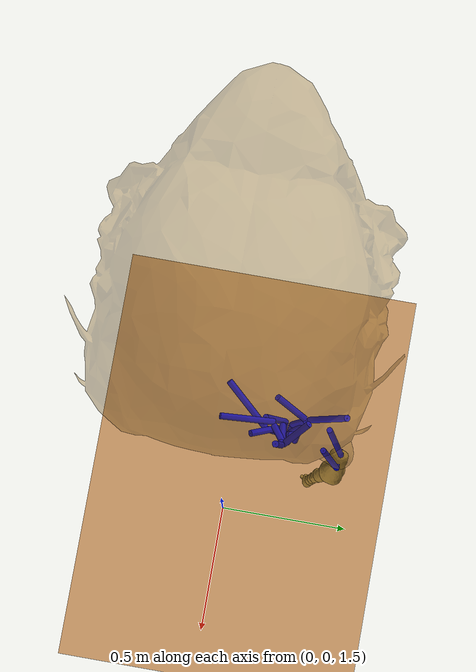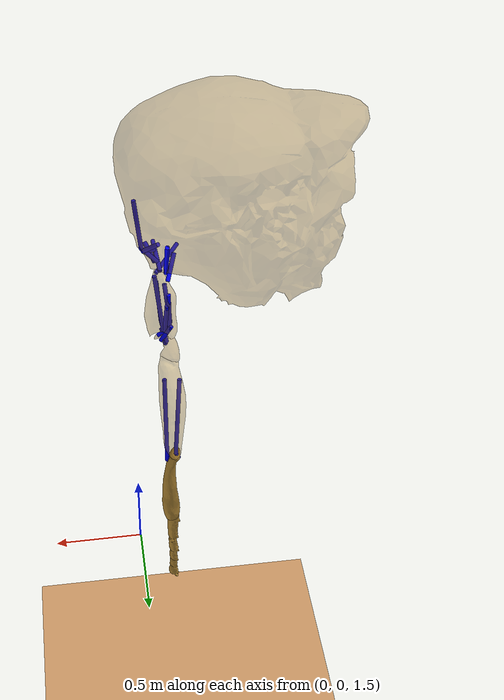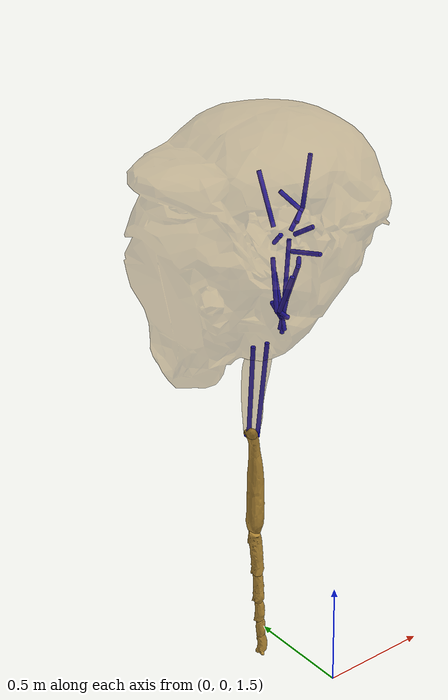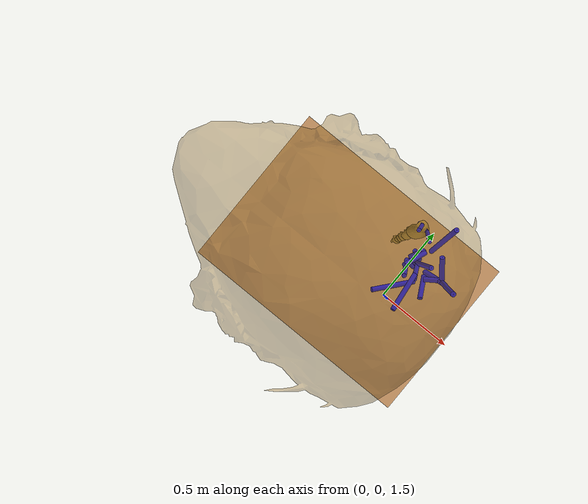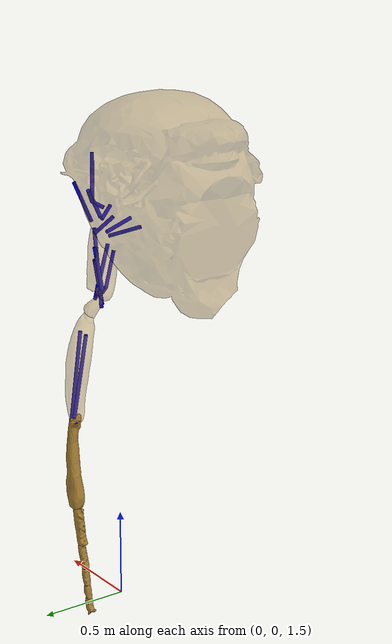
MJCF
<mujoco model="template">
  <!-- This model has been converted from an OpenSim model. Model conversion by MyoConverter https://github.com/MyoHub/myoconverter. This model is licensed under Apache 2.0. -->
  <compiler angle="radian" autolimits="true"/>
  <option timestep="1e-04" gravity="0 0 -9801"/>
  <size njmax="1000" nconmax="400" nkey="1" nuser_jnt="1"/>
  <visual>
    <scale framelength="0.5" framewidth="0.01"/>
  </visual>
  <statistic meansize="0.298677" extent="5.78307" center="-0.79295 0.00627929 2.89153"/>
  <default class="main">
    <joint limited="true" armature="0.0005" stiffness="0.4" damping="0.02"/>
    <geom margin="0.001" rgba="0.8 0.6 0.4 1"/>
    <site size="0.001 0.005 0.005"/>
    <tendon limited="false" width="0.01" rgba="0.0 0.0 0.95 1"/>
    <default class="muscle">
      <general ctrllimited="true" ctrlrange="0 1" dyntype="muscle" gaintype="muscle" biastype="muscle" dynprm="0.01 0.04 0 0 0 0 0 0 0 0" gainprm="0.75 1.05 -1 200 0.5 1.6 1.5 1.3 1.2 0" biasprm="0.75 1.05 -1 200 0.5 1.6 1.5 1.3 1.2 0"/>
    </default>
    <default class="motor">
      <general gainprm="5 0 0 0 0 0 0 0 0 0"/>
    </default>
  </default>
  <asset>
    <texture type="skybox" builtin="gradient" rgb1="0.1 0.1 0.1" rgb2="0 0 0" width="256" height="1536"/>
    <mesh name="Thorax_geom_Thorax" file="./meshes/stl/Thorax.stl" scale="1000 1000 1000"/>
    <mesh name="A1A2_geom_A1A2" file="./meshes/stl/A1A2.stl" scale="1000 1000 1000"/>
    <mesh name="A3_geom_A3" file="./meshes/stl/A3.stl" scale="1000 1000 1000"/>
    <mesh name="A4_geom_A4" file="./meshes/stl/A4.stl" scale="1000 1000 1000"/>
    <mesh name="A5_geom_A5" file="./meshes/stl/A5.stl" scale="1000 1000 1000"/>
    <mesh name="A6_geom_A6" file="./meshes/stl/A6.stl" scale="1000 1000 1000"/>
    <mesh name="Head_geom_Head" file="./meshes/stl/Head.stl" scale="1000 1000 1000"/>
    <mesh name="LEye_geom_LEye" file="./meshes/stl/LEye.stl" scale="1000 1000 1000"/>
    <mesh name="LPedicel_geom_LPedicel" file="./meshes/stl/LPedicel.stl" scale="1000 1000 1000"/>
    <mesh name="LFuniculus_geom_LFuniculus" file="./meshes/stl/LFuniculus.stl" scale="1000 1000 1000"/>
    <mesh name="LArista_geom_LArista" file="./meshes/stl/LArista.stl" scale="1000 1000 1000"/>
    <mesh name="REye_geom_REye" file="./meshes/stl/REye.stl" scale="1000 1000 1000"/>
    <mesh name="RPedicel_geom_RPedicel" file="./meshes/stl/RPedicel.stl" scale="1000 1000 1000"/>
    <mesh name="RFuniculus_geom_RFuniculus" file="./meshes/stl/RFuniculus.stl" scale="1000 1000 1000"/>
    <mesh name="RArista_geom_RArista" file="./meshes/stl/RArista.stl" scale="1000 1000 1000"/>
    <mesh name="Rostrum_geom_Rostrum" file="./meshes/stl/Rostrum.stl" scale="1000 1000 1000"/>
    <mesh name="Haustellum_geom_Haustellum" file="./meshes/stl/Haustellum.stl" scale="1000 1000 1000"/>
    <mesh name="LFCoxa_geom_LFCoxa" file="./meshes/stl/LFCoxa.stl" scale="1000 1000 1000"/>
    <mesh name="LFTrochanter_geom_LFTrochanter" file="./meshes/stl/LFTrochanter.stl" scale="1000 1000 1000"/>
    <mesh name="LFFemur_geom_LFFemur" file="./meshes/stl/LFFemur.stl" scale="1000 1000 1000"/>
    <mesh name="LFTibia_geom_LFTibia" file="./meshes/stl/LFTibia.stl" scale="1000 1000 1000"/>
    <mesh name="LFTarsus1_geom_LFTarsus1" file="./meshes/stl/LFTarsus1.stl" scale="1000 1000 1000"/>
    <mesh name="LFTarsus2_geom_LFTarsus2" file="./meshes/stl/LFTarsus2.stl" scale="1000 1000 1000"/>
    <mesh name="LFTarsus3_geom_LFTarsus3" file="./meshes/stl/LFTarsus3.stl" scale="1000 1000 1000"/>
    <mesh name="LFTarsus4_geom_LFTarsus4" file="./meshes/stl/LFTarsus4.stl" scale="1000 1000 1000"/>
    <mesh name="LFTarsus5_geom_LFTarsus5" file="./meshes/stl/LFTarsus5.stl" scale="1000 1000 1000"/>
    <mesh name="LHCoxa_geom_LHCoxa" file="./meshes/stl/LHCoxa.stl" scale="1000 1000 1000"/>
    <mesh name="LHFemur_geom_LHFemur" file="./meshes/stl/LHFemur.stl" scale="1000 1000 1000"/>
    <mesh name="LHTibia_geom_LHTibia" file="./meshes/stl/LHTibia.stl" scale="1000 1000 1000"/>
    <mesh name="LHTarsus1_geom_LHTarsus1" file="./meshes/stl/LHTarsus1.stl" scale="1000 1000 1000"/>
    <mesh name="LHTarsus2_geom_LHTarsus2" file="./meshes/stl/LHTarsus2.stl" scale="1000 1000 1000"/>
    <mesh name="LHTarsus3_geom_LHTarsus3" file="./meshes/stl/LHTarsus3.stl" scale="1000 1000 1000"/>
    <mesh name="LHTarsus4_geom_LHTarsus4" file="./meshes/stl/LHTarsus4.stl" scale="1000 1000 1000"/>
    <mesh name="LHTarsus5_geom_LHTarsus5" file="./meshes/stl/LHTarsus5.stl" scale="1000 1000 1000"/>
    <mesh name="LHaltere_geom_LHaltere" file="./meshes/stl/LHaltere.stl" scale="1000 1000 1000"/>
    <mesh name="LMCoxa_geom_LMCoxa" file="./meshes/stl/LMCoxa.stl" scale="1000 1000 1000"/>
    <mesh name="LMFemur_geom_LMFemur" file="./meshes/stl/LMFemur.stl" scale="1000 1000 1000"/>
    <mesh name="LMTibia_geom_LMTibia" file="./meshes/stl/LMTibia.stl" scale="1000 1000 1000"/>
    <mesh name="LMTarsus1_geom_LMTarsus1" file="./meshes/stl/LMTarsus1.stl" scale="1000 1000 1000"/>
    <mesh name="LMTarsus2_geom_LMTarsus2" file="./meshes/stl/LMTarsus2.stl" scale="1000 1000 1000"/>
    <mesh name="LMTarsus3_geom_LMTarsus3" file="./meshes/stl/LMTarsus3.stl" scale="1000 1000 1000"/>
    <mesh name="LMTarsus4_geom_LMTarsus4" file="./meshes/stl/LMTarsus4.stl" scale="1000 1000 1000"/>
    <mesh name="LMTarsus5_geom_LMTarsus5" file="./meshes/stl/LMTarsus5.stl" scale="1000 1000 1000"/>
    <mesh name="LWing_geom_LWing" file="./meshes/stl/LWing.stl" scale="1000 1000 1000"/>
    <mesh name="RFCoxa_geom_RFCoxa" file="./meshes/stl/RFCoxa.stl" scale="1000 1000 1000"/>
    <mesh name="RFTrochanter_geom_RFTrochanter" file="./meshes/stl/RFTrochanter.stl" scale="1000 1000 1000"/>
    <mesh name="RFFemur_geom_RFFemur" file="./meshes/stl/RFFemur.stl" scale="1000 1000 1000"/>
    <mesh name="RFTibia_geom_RFTibia" file="./meshes/stl/RFTibia.stl" scale="1000 1000 1000"/>
    <mesh name="RFTarsus1_geom_RFTarsus1" file="./meshes/stl/RFTarsus1.stl" scale="1000 1000 1000"/>
    <mesh name="RFTarsus2_geom_RFTarsus2" file="./meshes/stl/RFTarsus2.stl" scale="1000 1000 1000"/>
    <mesh name="RFTarsus3_geom_RFTarsus3" file="./meshes/stl/RFTarsus3.stl" scale="1000 1000 1000"/>
    <mesh name="RFTarsus4_geom_RFTarsus4" file="./meshes/stl/RFTarsus4.stl" scale="1000 1000 1000"/>
    <mesh name="RFTarsus5_geom_RFTarsus5" file="./meshes/stl/RFTarsus5.stl" scale="1000 1000 1000"/>
    <mesh name="RHCoxa_geom_RHCoxa" file="./meshes/stl/RHCoxa.stl" scale="1000 1000 1000"/>
    <mesh name="RHFemur_geom_RHFemur" file="./meshes/stl/RHFemur.stl" scale="1000 1000 1000"/>
    <mesh name="RHTibia_geom_RHTibia" file="./meshes/stl/RHTibia.stl" scale="1000 1000 1000"/>
    <mesh name="RHTarsus1_geom_RHTarsus1" file="./meshes/stl/RHTarsus1.stl" scale="1000 1000 1000"/>
    <mesh name="RHTarsus2_geom_RHTarsus2" file="./meshes/stl/RHTarsus2.stl" scale="1000 1000 1000"/>
    <mesh name="RHTarsus3_geom_RHTarsus3" file="./meshes/stl/RHTarsus3.stl" scale="1000 1000 1000"/>
    <mesh name="RHTarsus4_geom_RHTarsus4" file="./meshes/stl/RHTarsus4.stl" scale="1000 1000 1000"/>
    <mesh name="RHTarsus5_geom_RHTarsus5" file="./meshes/stl/RHTarsus5.stl" scale="1000 1000 1000"/>
    <mesh name="RHaltere_geom_RHaltere" file="./meshes/stl/RHaltere.stl" scale="1000 1000 1000"/>
    <mesh name="RMCoxa_geom_RMCoxa" file="./meshes/stl/RMCoxa.stl" scale="1000 1000 1000"/>
    <mesh name="RMFemur_geom_RMFemur" file="./meshes/stl/RMFemur.stl" scale="1000 1000 1000"/>
    <mesh name="RMTibia_geom_RMTibia" file="./meshes/stl/RMTibia.stl" scale="1000 1000 1000"/>
    <mesh name="RMTarsus1_geom_RMTarsus1" file="./meshes/stl/RMTarsus1.stl" scale="1000 1000 1000"/>
    <mesh name="RMTarsus2_geom_RMTarsus2" file="./meshes/stl/RMTarsus2.stl" scale="1000 1000 1000"/>
    <mesh name="RMTarsus3_geom_RMTarsus3" file="./meshes/stl/RMTarsus3.stl" scale="1000 1000 1000"/>
    <mesh name="RMTarsus4_geom_RMTarsus4" file="./meshes/stl/RMTarsus4.stl" scale="1000 1000 1000"/>
    <mesh name="RMTarsus5_geom_RMTarsus5" file="./meshes/stl/RMTarsus5.stl" scale="1000 1000 1000"/>
    <mesh name="RWing_geom_RWing" file="./meshes/stl/RWing.stl" scale="1000 1000 1000"/>
    <texture name="texplane" type="2d" builtin="checker" rgb1=".2 .3 .4" rgb2=".1 0.15 0.2" width="100" height="100"></texture>
    <material name="MatPlane" reflectance="0.0" texture="texplane" texrepeat="1 1" texuniform="true"></material>
  </asset>
  <worldbody>
    <geom name="floor" pos="0 0 0" size="10 10 0.125" type="plane" material="MatPlane" condim="3"></geom>
    <light pos="0 0 0" dir="0 0 -1" directional="true"/>
    <body name="ground" quat="0.707035 0.707179 0 0"/>
    <body name="Thorax" pos="0 0 4" quat="1 0.00039815 0 0">
      <inertial pos="-0.494322 0.00632413 -0.092333" quat="0.707107 0 0 0.707107" mass="0.000764745" diaginertia="0.000147879 0.000132741 0.000130565"/>
      <geom name="Thorax_geom" type="mesh" rgba="0.54902 0.392157 0.117647 0.4" mesh="Thorax_geom_Thorax"/>
      <site name="LFC_tergopleural_promotor_a_LFC_Miller28a_p1" pos="-0.114654 0.257882 -0.0767316"/>
      <site name="LFC_tergopleural_promotor_a_LFC_Miller28a_p296" pos="-0.0536972 0.195885 -0.156875"/>
      <site name="LFC_tergopleural_promotor_b_LFC_Miller28b_p1" pos="-0.0240142 0.173429 0.0948372"/>
      <site name="LFC_tergopleural_promotor_b_LFC_Miller28b_p296" pos="-0.0488125 0.190386 -0.14598"/>
      <site name="LFC_pleural_remotor_and_abductor_LFC_Miller29_p1" pos="-0.142657 0.360402 -0.0136161"/>
      <site name="LFC_pleural_promotor_LFC_Miller30_p1" pos="-0.0711132 0.0949424 -0.189604"/>
      <site name="LFC_sternal_anterior_rotator_LFC_Miller31_p1" pos="-0.115085 -0.00351255 -0.261577"/>
      <site name="LFC_sternal_posterior_rotator_LFC_Miller32_p1" pos="-0.19309 0.155095 -0.212373"/>
      <site name="LFC_sternal_adductor_LFC_Miller33_p1" pos="-0.224526 0.00517388 -0.283581"/>
      <body name="A1A2" pos="-0.8331 0.003688 -0.1676">
        <inertial pos="-0.24128 0.00311472 0.0148448" quat="0.707107 0.707107 0 0" mass="0.000213925" diaginertia="2.54273e-05 2.00535e-05 1.33312e-05"/>
        <geom name="A1A2_geom" type="mesh" rgba="0.55 0.392 0.118 0" mesh="A1A2_geom_A1A2"/>
        <body name="A3" pos="-0.3565 1.131e-05 0.0006225">
          <inertial pos="-0.0715831 0.00345898 -0.0502004" quat="0.707107 0.707107 0 0" mass="0.000186803" diaginertia="2.39895e-05 1.67418e-05 1.1667e-05"/>
          <geom name="A3_geom" type="mesh" rgba="0.55 0.392 0.118 0" mesh="A3_geom_A3"/>
          <body name="A4" pos="-0.2376 7.636e-06 0.001245">
            <inertial pos="-0.0908526 0.00344036 -0.0632832" quat="0.707107 0.707107 0 0" mass="0.000160204" diaginertia="1.96464e-05 1.42062e-05 8.61745e-06"/>
            <geom name="A4_geom" type="mesh" rgba="0.55 0.392 0.118 0" mesh="A4_geom_A4"/>
            <body name="A5" pos="-0.2143 6.839e-06 0.0007057">
              <inertial pos="-0.105531 0.00359672 -0.0687575" quat="0.707107 0.707107 0 0" mass="0.000172917" diaginertia="1.87016e-05 1.36745e-05 9.94377e-06"/>
              <geom name="A5_geom" type="mesh" rgba="0.55 0.392 0.118 0" mesh="A5_geom_A5"/>
              <body name="A6" pos="-0.268 8.629e-06 0.001505">
                <inertial pos="-0.161579 0.00335752 -0.0439147" quat="0.707107 0.707107 0 0" mass="0.000175666" diaginertia="1.35482e-05 1.2723e-05 1.07663e-05"/>
                <geom name="A6_geom" type="mesh" rgba="0.55 0.392 0.118 0" mesh="A6_geom_A6"/>
              </body>
            </body>
          </body>
        </body>
      </body>
      <body name="Head" pos="0.02132 0.0007789 0.009236">
        <inertial pos="0.255478 4.1764e-05 0.000543805" quat="0.707107 0.707107 0 0" mass="0.000222534" diaginertia="1.92885e-05 1.59947e-05 1.35827e-05"/>
        <geom name="Head_geom" type="mesh" rgba="0.55 0.392 0.118 0" mesh="Head_geom_Head"/>
        <body name="LEye" pos="0.2549 0.003504 0.02267">
          <inertial pos="-0.0274789 0.304692 -0.0266042" quat="0.707107 0 0 0.707107" mass="4.17671e-05" diaginertia="1.43734e-06 1.03674e-06 7.26012e-07"/>
          <geom name="LEye_geom" type="mesh" rgba="0.67 0.21 0.12 0" mesh="LEye_geom_LEye"/>
        </body>
        <body name="LPedicel" pos="0.4451 0.08574 0.09248">
          <inertial pos="0.0581497 0.00781413 -0.0246243" quat="0 0.707107 0 0.707107" mass="3.70423e-06" diaginertia="2.21575e-08 1.66688e-08 1.53325e-08"/>
          <geom name="LPedicel_geom" type="mesh" rgba="0.55 0.392 0.118 0" mesh="LPedicel_geom_LPedicel"/>
          <body name="LFuniculus" pos="0.03883 -0.000308 -0.037">
            <inertial pos="0.00696675 -0.00606963 -0.114734" mass="2.28746e-06" diaginertia="9.85951e-09 9.69762e-09 5.56069e-09"/>
            <geom name="LFuniculus_geom" type="mesh" rgba="0.55 0.392 0.118 0" mesh="LFuniculus_geom_LFuniculus"/>
            <body name="LArista" pos="0.02065 0.04886 -0.0705">
              <inertial pos="0.00595896 0.11696 0.00247718" quat="0.707107 0.707107 0 0" mass="1.82512e-06" diaginertia="1.3335e-08 1.10473e-08 3.45166e-09"/>
              <geom name="LArista_geom" type="mesh" rgba="0.55 0.392 0.118 0" mesh="LArista_geom_LArista"/>
            </body>
          </body>
        </body>
        <body name="REye" pos="0.2549 -0.004274 0.02267">
          <inertial pos="-0.0373091 -0.295704 -0.0367505" quat="0.707107 0 0 0.707107" mass="4.65637e-05" diaginertia="1.63701e-06 1.18732e-06 8.76892e-07"/>
          <geom name="REye_geom" type="mesh" rgba="0.67 0.21 0.12 0" mesh="REye_geom_REye"/>
        </body>
        <body name="RPedicel" pos="0.4451 -0.09396 0.09248">
          <inertial pos="0.0557377 -0.00782174 -0.0272507" quat="0 0.707107 0 0.707107" mass="3.95677e-06" diaginertia="2.49749e-08 1.83245e-08 1.74009e-08"/>
          <geom name="RPedicel_geom" type="mesh" rgba="0.55 0.392 0.118 0" mesh="RPedicel_geom_RPedicel"/>
          <body name="RFuniculus" pos="0.04458 0.0009634 -0.037">
            <inertial pos="-0.000266105 0.0121457 -0.113255" mass="2.3598e-06" diaginertia="1.04373e-08 9.92513e-09 5.94119e-09"/>
            <geom name="RFuniculus_geom" type="mesh" rgba="0.55 0.392 0.118 0" mesh="RFuniculus_geom_RFuniculus"/>
            <body name="RArista" pos="0.01495 -0.05104 -0.06929">
              <inertial pos="0.00754415 -0.108724 0.0018316" quat="0.707107 0.707107 0 0" mass="2.00695e-06" diaginertia="1.46812e-08 1.21048e-08 4.06603e-09"/>
              <geom name="RArista_geom" type="mesh" rgba="0.55 0.392 0.118 0" mesh="RArista_geom_RArista"/>
            </body>
          </body>
        </body>
        <body name="Rostrum" pos="0.466 -0.01276 -0.2599">
          <inertial pos="0.00656494 0.0181497 -0.171677" quat="0.5 0.5 0.5 0.5" mass="6.84514e-05" diaginertia="2.3845e-06 2.3382e-06 1.92715e-06"/>
          <geom name="Rostrum_geom" type="mesh" rgba="0.55 0.392 0.118 0" mesh="Rostrum_geom_Rostrum"/>
          <body name="Haustellum" pos="0.03579 -0.0004681 -0.3697">
            <inertial pos="0.152665 0.0228224 -0.00316751" quat="0 0.707107 0 0.707107" mass="2.34306e-05" diaginertia="4.98891e-07 3.72017e-07 3.24565e-07"/>
            <geom name="Haustellum_geom" type="mesh" rgba="0.55 0.392 0.118 0" mesh="Haustellum_geom_Haustellum"/>
          </body>
        </body>
      </body>
      <body name="LFCoxa" pos="-0.1306 0.1995 -0.2305">
        <inertial pos="0.00455966 -0.0113278 -0.215003" quat="0.707107 0 0 0.707107" mass="9.73852e-06" diaginertia="1.82938e-07 1.82146e-07 3.66796e-08"/>
        <joint name="joint_LFCoxa_yaw" pos="0 0 0" axis="1 0 0" limited="false" range="-0.597 0.2745" springref="-0.11"/>
        <joint name="joint_LFCoxa_pitch" pos="0 0 0" axis="0 1 0" limited="false" range="-0.5783 0.7375" springref="0.35"/>
        <joint name="joint_LFCoxa_roll" pos="0 0 0" axis="0 0 1" range="0.1436 0.6236" springref="0.5"/>
        <geom name="LFCoxa_geom" type="mesh" rgba="0.670588 0.509804 0.196078 0.4" mesh="LFCoxa_geom_LFCoxa"/>
        <site name="LFC_tergopleural_promotor_a_LFC_Miller28a_p396" pos="0.0245106 -0.0407481 0.0471896"/>
        <site name="LFC_tergopleural_promotor_b_LFC_Miller28b_p396" pos="0.0143019 -0.0150923 0.00156441"/>
        <site name="LFC_pleural_remotor_and_abductor_LFC_Miller29_p296" pos="-0.0146505 0.0607293 -0.00146763"/>
        <site name="LFC_pleural_promotor_LFC_Miller30_p296" pos="0.0237058 -0.0286361 -0.0128408"/>
        <site name="LFC_sternal_anterior_rotator_LFC_Miller31_p296" pos="-0.000252024 -0.0417953 -0.0781376"/>
        <site name="LFC_sternal_posterior_rotator_LFC_Miller32_p296" pos="-0.0235126 0.0447151 -0.0653978"/>
        <site name="LFC_sternal_adductor_LFC_Miller33_p296" pos="0.0171012 -0.0661154 -0.10726"/>
        <site name="LFF_trochanter_flexor_b_lff_thco_flexb_p1" pos="0.0170207 -0.0595734 -0.149676"/>
        <site name="LFF_trochanter_flexor_b_lff_thco_flexb_p222" pos="0.00538458 -0.000688346 -0.323979"/>
        <site name="LFF_sterno-tergo-trochanter_extensor_a_lff_thco_stta_p1" pos="-0.0259722 0.0507932 -0.138759"/>
        <site name="LFF_sterno-tergo-trochanter_extensor_a_lff_thco_stta_p222" pos="-0.0352248 0.0126312 -0.373938"/>
        <site name="LFF_sterno-tergo-trochanter_extensor_b_LFF_sterno-tergo-trochanter_extensor_b_p1" pos="-0.0208632 -0.0709668 -0.178621"/>
        <site name="LFF_sterno-tergo-trochanter_extensor_b_LFF_sterno-tergo-trochanter_extensor_b_p222" pos="-0.0389383 -0.00938934 -0.362884"/>
        <site name="LFF_accesory_trochanter_flexor_LFF_roll_f_p1" pos="-0.0193081 0.0479785 -0.207105"/>
        <site name="LFF_trochanter_extensor_LFF_roll_e_p1" pos="-0.0381487 0.0404632 -0.339836"/>
        <site name="LFF_trochanter_flexor_a_LFF_flexa_p1" pos="0.0311254 0.014358 -0.0559144"/>
        <site name="m_coxa_marker" pos="0 0 0" size="0.01" group="4" rgba="1 0.1 0.5 0.5"/>
        <body name="LFTrochanter" pos="-0.002 0.015 -0.4402">
          <inertial pos="-0.0136337 0.0341937 -0.0160004" quat="0.707107 0.707107 0 0" mass="1.70307e-06" diaginertia="4.86831e-09 4.75181e-09 3.4135e-09"/>
          <joint name="joint_LFTrochanter_yaw" pos="0 0 0" axis="1 0 0" limited="false" range="-1.196 0.2745" springref="-0.1"/>
          <joint name="joint_LFTrochanter_pitch" pos="0 0 0" axis="0 1 0" limited="false" range="-3.242 -1.217" springref="-2.8"/>
          <joint name="joint_LFTrochanter_roll" pos="0 0 0" axis="0 0 1" limited="false" range="-0.2745 1.384" springref="0"/>
          <geom name="LFTrochanter_geom" type="mesh" rgba="0.55 0.392 0.118 0.4" mesh="LFTrochanter_geom_LFTrochanter"/>
          <site name="LFF_trochanter_flexor_b_lff_thco_flexb_p322" pos="-0.0170405 -0.00472335 -0.0228887"/>
          <site name="LFF_sterno-tergo-trochanter_extensor_a_lff_thco_stta_p322" pos="0.0222687 -0.00812877 0.0211095"/>
          <site name="LFF_sterno-tergo-trochanter_extensor_b_LFF_sterno-tergo-trochanter_extensor_b_p322" pos="0.00657561 -0.0279958 0.0341395"/>
          <site name="LFF_accesory_trochanter_flexor_LFF_roll_f_p222" pos="-0.00549219 -0.0199954 -0.0253338"/>
          <site name="LFF_trochanter_extensor_LFF_roll_e_p222" pos="0.0102047 0.013626 0.00768368"/>
          <site name="LFF_trochanter_flexor_a_LFF_flexa_p222" pos="-0.0121828 -0.0117695 -0.0403746"/>
          <site name="m_trochanter_marker" pos="0 0 0" size="0.01" group="4" rgba="1 0.1 0.5 0.5"/>
          <body name="LFFemur" pos="-0.01994 0.07244 -0.06238">
            <inertial pos="-0.00581711 0.0635589 -0.27996" mass="1.2483e-05" diaginertia="4.1473e-07 4.01495e-07 4.64816e-08"/>
            <geom name="LFFemur_geom" type="mesh" rgba="0.67 0.51 0.196 0.4" mesh="LFFemur_geom_LFFemur"/>
            <site name="LFTibia_flex_93434_bifemlh_r-P1" pos="-0.0415201 0.0475376 -0.0877767"/>
            <site name="LFTibia_flex_93434_bifemlh_r-P2" pos="-0.0151968 0.110902 -0.546627"/>
            <site name="LFTibia_extensor_93932_bifemlh_r-P1" pos="0.0276828 0.0384591 -0.0895311"/>
            <site name="LFTibia_extensor_93932_bifemlh_r-P2" pos="0.0267536 0.105256 -0.597078"/>
            <site name="m_femur_marker" pos="0 0 0" size="0.01" group="4" rgba="1 0.1 0.5 0.5"/>
            <body name="LFTibia" pos="-0.01982 0.1003 -0.5661">
              <inertial pos="0.0289105 -0.00239717 -0.245561" quat="0.707107 0 0 0.707107" mass="4.51507e-06" diaginertia="1.24763e-07 1.24206e-07 6.26811e-09"/>
              <joint name="joint_LFTibia_pitch" pos="0 0 0" axis="0 1 0" range="0.4789 2.502" springref="2"/>
              <geom name="LFTibia_geom" type="mesh" rgba="0.67 0.51 0.196 1" mesh="LFTibia_geom_LFTibia"/>
              <site name="LFTibia_flex_93434_pp21995" pos="-0.0108694 0.0114727 -0.0107331"/>
              <site name="LFTibia_extensor_93932_pp21995" pos="0.035 0.002 0.000927515"/>
              <site name="m_tibia_marker" pos="0 0 0" size="0.01" group="4" rgba="1 0.1 0.5 0.5"/>
              <body name="LFTarsus1" pos="0.01915 -0.01293 -0.51">
                <inertial pos="-0.00414801 -0.00898333 -0.116831" mass="1.19008e-06" diaginertia="6.25046e-09 6.09661e-09 1.04328e-09"/>
                <geom name="LFTarsus1_geom" type="mesh" rgba="0.67 0.51 0.196 1" mesh="LFTarsus1_geom_LFTarsus1"/>
                <site name="m_tarsus1_marker" pos="0 0 0" size="0.01" group="4" rgba="1 0.1 0.5 0.5"/>
                <body name="LFTarsus2" pos="-0.0002464 -0.0194 -0.2175">
                  <inertial pos="-0.00616755 -0.00734805 -0.085785" mass="5.14227e-07" diaginertia="1.18427e-09 1.17926e-09 2.96167e-10"/>
                  <geom name="LFTarsus2_geom" type="mesh" rgba="0.67 0.51 0.196 1" mesh="LFTarsus2_geom_LFTarsus2"/>
                  <site name="m_tarsus2_marker" pos="0 0 0" size="0.01" group="4" rgba="1 0.1 0.5 0.5"/>
                  <body name="LFTarsus3" pos="-0.002981 -0.01951 -0.1549">
                    <inertial pos="-0.00486664 -0.00132481 -0.0549736" quat="0.707107 0 0 0.707107" mass="2.45481e-07" diaginertia="2.89483e-10 2.89037e-10 9.657e-11"/>
                    <geom name="LFTarsus3_geom" type="mesh" rgba="0.67 0.51 0.196 1" mesh="LFTarsus3_geom_LFTarsus3"/>
                    <site name="m_tarsus3_marker" pos="0 0 0" size="0.01" group="4" rgba="1 0.1 0.5 0.5"/>
                    <body name="LFTarsus4" pos="-0.002051 -0.009805 -0.09654">
                      <inertial pos="-0.000706051 -0.000287795 -0.0481465" quat="0.707107 0 0 0.707107" mass="1.70147e-07" diaginertia="1.54176e-10 1.54073e-10 5.30819e-11"/>
                      <geom name="LFTarsus4_geom" type="mesh" rgba="0.67 0.51 0.196 1" mesh="LFTarsus4_geom_LFTarsus4"/>
                      <site name="m_tarsus4_marker" pos="0 0 0" size="0.01" group="4" rgba="1 0.1 0.5 0.5"/>
                      <body name="LFTarsus5" pos="0.0007281 -0.009863 -0.08672">
                        <inertial pos="-0.00519861 -0.00486737 -0.0478948" quat="0.707107 0 0 0.707107" mass="3.03069e-07" diaginertia="3.53043e-10 3.39673e-10 1.55482e-10"/>
                        <geom name="LFTarsus5_geom" type="mesh" rgba="0.67 0.51 0.196 1" mesh="LFTarsus5_geom_LFTarsus5"/>
                        <site name="m_tarsus5_marker" pos="0 0 0" size="0.01" group="4" rgba="1 0.1 0.5 0.5"/>
                      </body>
                    </body>
                  </body>
                </body>
              </body>
            </body>
          </body>
        </body>
      </body>
      <body name="LHCoxa" pos="-0.7523 0.09065 -0.5018">
        <inertial pos="-0.0159643 0.0246478 -0.0933377" quat="0.707107 0 0 0.707107" mass="7.17586e-06" diaginertia="6.07932e-08 5.82668e-08 3.35992e-08"/>
        <geom name="LHCoxa_geom" type="mesh" rgba="0.67 0.51 0.196 0" mesh="LHCoxa_geom_LHCoxa"/>
        <body name="LHFemur" pos="-0.0002747 -0.0001835 -0.1994">
          <inertial pos="0.0232488 -0.0136841 -0.432001" quat="0.707107 0 0 0.707107" mass="2.38234e-05" diaginertia="1.57648e-06 1.57285e-06 1.12941e-07"/>
          <geom name="LHFemur_geom" type="mesh" rgba="0.67 0.51 0.196 0" mesh="LHFemur_geom_LHFemur"/>
          <body name="LHTibia" pos="0.0001354 -0.0001856 -0.8363">
            <inertial pos="0.00626293 -0.00679071 -0.348891" quat="0.707107 0 0 0.707107" mass="1.12096e-05" diaginertia="5.56118e-07 5.52003e-07 2.90501e-08"/>
            <geom name="LHTibia_geom" type="mesh" rgba="0.67 0.51 0.196 0" mesh="LHTibia_geom_LHTibia"/>
            <body name="LHTarsus1" pos="0.00026 -0.0004872 -0.6845">
              <inertial pos="-0.0234195 0.00908097 -0.186671" quat="0.707107 0 0 0.707107" mass="2.72417e-06" diaginertia="3.37474e-08 3.33087e-08 3.47703e-09"/>
              <geom name="LHTarsus1_geom" type="mesh" rgba="0.67 0.51 0.196 0" mesh="LHTarsus1_geom_LHTarsus1"/>
              <body name="LHTarsus2" pos="-5.885e-05 0.0007204 -0.3527">
                <inertial pos="-0.0153077 0.00886279 -0.0989871" quat="0.707107 0 0 0.707107" mass="9.42767e-07" diaginertia="3.51794e-09 3.34548e-09 8.06006e-10"/>
                <geom name="LHTarsus2_geom" type="mesh" rgba="0.67 0.51 0.196 0" mesh="LHTarsus2_geom_LHTarsus2"/>
                <body name="LHTarsus3" pos="1.944e-05 -0.0009287 -0.1751">
                  <inertial pos="-0.0146137 0.00750133 -0.0561808" quat="0.707107 0 0 0.707107" mass="2.45771e-07" diaginertia="2.9256e-10 2.81926e-10 9.7986e-11"/>
                  <geom name="LHTarsus3_geom" type="mesh" rgba="0.67 0.51 0.196 0" mesh="LHTarsus3_geom_LHTarsus3"/>
                  <body name="LHTarsus4" pos="6.432e-06 0.0009783 -0.09671">
                    <inertial pos="-0.0126492 0.00552585 -0.0440074" quat="0.707107 0 0 0.707107" mass="1.79619e-07" diaginertia="1.50072e-10 1.4687e-10 6.36462e-11"/>
                    <geom name="LHTarsus4_geom" type="mesh" rgba="0.67 0.51 0.196 0" mesh="LHTarsus4_geom_LHTarsus4"/>
                    <body name="LHTarsus5" pos="7.186e-05 -0.0002378 -0.0733">
                      <inertial pos="-0.0182454 0.00769578 -0.0539859" quat="0.707107 0 0 0.707107" mass="4.76484e-07" diaginertia="6.48977e-10 6.18323e-10 3.73471e-10"/>
                      <geom name="LHTarsus5_geom" type="mesh" rgba="0.67 0.51 0.196 0" mesh="LHTarsus5_geom_LHTarsus5"/>
                    </body>
                  </body>
                </body>
              </body>
            </body>
          </body>
        </body>
      </body>
      <body name="LHaltere" pos="-0.7774 0.2172 -0.1547">
        <inertial pos="-0.0206905 0.165755 0.0117958" quat="0.707107 0.707107 0 0" mass="4.30889e-06" diaginertia="5.65926e-08 5.39717e-08 1.23612e-08"/>
        <geom name="LHaltere_geom" type="mesh" rgba="0.55 0.392 0.118 0" mesh="LHaltere_geom_LHaltere"/>
      </body>
      <body name="LMCoxa" pos="-0.5255 0.1286 -0.4854">
        <inertial pos="-0.0036639 0.0120175 -0.0774512" mass="9.12358e-06" diaginertia="8.67904e-08 7.88228e-08 5.40376e-08"/>
        <geom name="LMCoxa_geom" type="mesh" rgba="0.67 0.51 0.196 0" mesh="LMCoxa_geom_LMCoxa"/>
        <body name="LMFemur" pos="-0.0002159 0.0001284 -0.1814">
          <inertial pos="0.0166108 0.00296276 -0.411691" quat="0.707107 0 0 0.707107" mass="1.51268e-05" diaginertia="9.07876e-07 9.01393e-07 4.80556e-08"/>
          <geom name="LMFemur_geom" type="mesh" rgba="0.67 0.51 0.196 0" mesh="LMFemur_geom_LMFemur"/>
          <body name="LMTibia" pos="-0.0009698 0.000251 -0.7837">
            <inertial pos="0.01051 0.00463503 -0.357735" quat="0.707107 0 0 0.707107" mass="8.07649e-06" diaginertia="3.75226e-07 3.72299e-07 1.56622e-08"/>
            <geom name="LMTibia_geom" type="mesh" rgba="0.67 0.51 0.196 0" mesh="LMTibia_geom_LMTibia"/>
            <body name="LMTarsus1" pos="0.0002794 0.0002646 -0.6673">
              <inertial pos="-0.013342 0.00505271 -0.170568" quat="0.707107 0 0 0.707107" mass="1.30946e-06" diaginertia="1.01435e-08 9.92324e-09 1.03363e-09"/>
              <geom name="LMTarsus1_geom" type="mesh" rgba="0.67 0.51 0.196 0" mesh="LMTarsus1_geom_LMTarsus1"/>
              <body name="LMTarsus2" pos="0.0004465 -0.0006064 -0.2943">
                <inertial pos="-0.00995194 0.00458387 -0.0979753" quat="0.707107 0 0 0.707107" mass="3.96462e-07" diaginertia="9.53082e-10 9.36129e-10 1.70349e-10"/>
                <geom name="LMTarsus2_geom" type="mesh" rgba="0.67 0.51 0.196 0" mesh="LMTarsus2_geom_LMTarsus2"/>
                <body name="LMTarsus3" pos="-9.113e-05 -0.0001652 -0.1592">
                  <inertial pos="-0.0085057 0.00554683 -0.0634284" quat="0.707107 0 0 0.707107" mass="2.79607e-07" diaginertia="3.44015e-10 3.194e-10 1.29386e-10"/>
                  <geom name="LMTarsus3_geom" type="mesh" rgba="0.67 0.51 0.196 0" mesh="LMTarsus3_geom_LMTarsus3"/>
                  <body name="LMTarsus4" pos="0.0002296 -0.0001476 -0.08973">
                    <inertial pos="-0.00660918 0.00459102 -0.0474418" quat="0.707107 0 0 0.707107" mass="1.29643e-07" diaginertia="7.77205e-11 7.13338e-11 4.20233e-11"/>
                    <geom name="LMTarsus4_geom" type="mesh" rgba="0.67 0.51 0.196 0" mesh="LMTarsus4_geom_LMTarsus4"/>
                    <body name="LMTarsus5" pos="0.0001935 6.847e-05 -0.06328">
                      <inertial pos="-0.00794868 0.00578132 -0.0583332" mass="3.78739e-07" diaginertia="4.66081e-10 4.64648e-10 2.38196e-10"/>
                      <geom name="LMTarsus5_geom" type="mesh" rgba="0.67 0.51 0.196 0" mesh="LMTarsus5_geom_LMTarsus5"/>
                    </body>
                  </body>
                </body>
              </body>
            </body>
          </body>
        </body>
      </body>
      <body name="LWing" pos="-0.5184 0.3736 0.1782">
        <inertial pos="-0.137186 1.09478 0.150103" quat="0.5 0.5 -0.5 0.5" mass="8.35992e-05" diaginertia="4.87563e-05 4.16941e-05 9.61943e-06"/>
        <geom name="LWing_geom" type="mesh" rgba="0.91 0.96 0.97 0" mesh="LWing_geom_LWing"/>
      </body>
      <body name="RFCoxa" pos="-0.1336 -0.1825 -0.2281">
        <inertial pos="0.0107711 0.0174502 -0.222084" quat="0.707107 0 0 0.707107" mass="9.00073e-06" diaginertia="1.62167e-07 1.61042e-07 3.20004e-08"/>
        <joint name="joint_RFCoxa_roll" pos="0 0 0" axis="0 0 1" limited="false" range="-3.142 3.142"/>
        <joint name="joint_RFCoxa_yaw" pos="0 0 0" axis="1 0 0" limited="false" range="-3.142 3.142"/>
        <joint name="joint_RFCoxa_pitch" pos="0 0 0" axis="0 1 0" limited="false" range="-3.142 3.142"/>
        <geom name="RFCoxa_geom" type="mesh" rgba="0.67 0.51 0.196 0" mesh="RFCoxa_geom_RFCoxa"/>
        <body name="RFTrochanter" pos="0.001 -0.015 -0.4427">
          <inertial pos="-0.0140009 -0.0344029 -0.0151007" quat="0.707107 0.707107 0 0" mass="1.64287e-06" diaginertia="4.59801e-09 4.57527e-09 3.1706e-09"/>
          <joint name="joint_RFTrochanter_yaw" pos="0 0 0" axis="1 0 0" limited="false" range="-3.142 3.142"/>
          <joint name="joint_RFTrochanter_pitch" pos="0 0 0" axis="0 1 0" limited="false" range="-3.142 3.142"/>
          <joint name="joint_RFTrochanter_roll" pos="0 0 0" axis="0 0 1" limited="false" range="-3.142 3.142"/>
          <geom name="RFTrochanter_geom" type="mesh" rgba="0.55 0.392 0.118 0" mesh="RFTrochanter_geom_RFTrochanter"/>
          <body name="RFFemur" pos="-0.0181 -0.09073 -0.06337">
            <inertial pos="-0.0100244 -0.0545158 -0.274426" mass="1.35699e-05" diaginertia="4.51484e-07 4.31157e-07 5.67644e-08"/>
            <geom name="RFFemur_geom" type="mesh" rgba="0.67 0.51 0.196 0" mesh="RFFemur_geom_RFFemur"/>
            <body name="RFTibia" pos="-0.02541 -0.1006 -0.5606">
              <inertial pos="0.0235938 -0.0142791 -0.244049" quat="0.707107 0 0 0.707107" mass="4.39195e-06" diaginertia="1.21508e-07 1.20958e-07 5.9274e-09"/>
              <joint name="joint_RFTibia_pitch" pos="0 0 0" axis="0 1 0" limited="false" range="-3.142 3.142"/>
              <geom name="RFTibia_geom" type="mesh" rgba="0.67 0.51 0.196 0" mesh="RFTibia_geom_RFTibia"/>
              <body name="RFTarsus1" pos="0.01583 -0.006302 -0.508">
                <inertial pos="-0.00685961 0.00362345 -0.117137" mass="1.11772e-06" diaginertia="5.74516e-09 5.69392e-09 9.15659e-10"/>
                <geom name="RFTarsus1_geom" type="mesh" rgba="0.67 0.51 0.196 0" mesh="RFTarsus1_geom_RFTarsus1"/>
                <body name="RFTarsus2" pos="0.001019 0.01109 -0.2183">
                  <inertial pos="-0.00462343 0.00578611 -0.0868273" quat="0.707107 0 0 0.707107" mass="4.34122e-07" diaginertia="9.81001e-10 9.66897e-10 2.12098e-10"/>
                  <geom name="RFTarsus2_geom" type="mesh" rgba="0.67 0.51 0.196 0" mesh="RFTarsus2_geom_RFTarsus2"/>
                  <body name="RFTarsus3" pos="0.003084 0.0132 -0.1543">
                    <inertial pos="-0.00862887 0.000172087 -0.0569779" quat="0.707107 0 0 0.707107" mass="2.17147e-07" diaginertia="2.47214e-10 2.47006e-10 7.63214e-11"/>
                    <geom name="RFTarsus3_geom" type="mesh" rgba="0.67 0.51 0.196 0" mesh="RFTarsus3_geom_RFTarsus3"/>
                    <body name="RFTarsus4" pos="-0.000449 0.007767 -0.09941">
                      <inertial pos="-0.00578237 -0.00315933 -0.0465487" mass="1.62306e-07" diaginertia="1.48362e-10 1.46429e-10 4.80093e-11"/>
                      <geom name="RFTarsus4_geom" type="mesh" rgba="0.67 0.51 0.196 0" mesh="RFTarsus4_geom_RFTarsus4"/>
                      <body name="RFTarsus5" pos="0.0007482 0.006685 -0.08619">
                        <inertial pos="-0.00826077 -0.000218937 -0.0466678" quat="0.707107 0 0 0.707107" mass="2.56605e-07" diaginertia="2.89752e-10 2.86392e-10 1.09716e-10"/>
                        <geom name="RFTarsus5_geom" type="mesh" rgba="0.67 0.51 0.196 0" mesh="RFTarsus5_geom_RFTarsus5"/>
                      </body>
                    </body>
                  </body>
                </body>
              </body>
            </body>
          </body>
        </body>
      </body>
      <body name="RHCoxa" pos="-0.7523 -0.08334 -0.5018">
        <inertial pos="-0.0158789 -0.0176177 -0.0933981" quat="0.707107 0 0 0.707107" mass="7.18009e-06" diaginertia="6.08522e-08 5.83084e-08 3.36375e-08"/>
        <geom name="RHCoxa_geom" type="mesh" rgba="0.67 0.51 0.196 0" mesh="RHCoxa_geom_RHCoxa"/>
        <body name="RHFemur" pos="-7.832e-05 0.0002781 -0.1994">
          <inertial pos="0.0232307 0.0201483 -0.43204" quat="0.707107 0 0 0.707107" mass="2.37809e-05" diaginertia="1.57363e-06 1.56982e-06 1.12545e-07"/>
          <geom name="RHFemur_geom" type="mesh" rgba="0.67 0.51 0.196 0" mesh="RHFemur_geom_RHFemur"/>
          <body name="RHTibia" pos="8.126e-05 -0.000745 -0.8363">
            <inertial pos="0.0103751 0.0120256 -0.348886" quat="0.707107 0 0 0.707107" mass="1.08907e-05" diaginertia="5.41717e-07 5.34557e-07 2.80748e-08"/>
            <geom name="RHTibia_geom" type="mesh" rgba="0.67 0.51 0.196 0" mesh="RHTibia_geom_RHTibia"/>
            <body name="RHTarsus1" pos="-0.0002619 0.0001844 -0.6845">
              <inertial pos="-0.0269022 0.00129052 -0.186714" quat="0.707107 0 0 0.707107" mass="2.62057e-06" diaginertia="3.28432e-08 3.16963e-08 3.39203e-09"/>
              <geom name="RHTarsus1_geom" type="mesh" rgba="0.67 0.51 0.196 0" mesh="RHTarsus1_geom_RHTarsus1"/>
              <body name="RHTarsus2" pos="0.0002525 -0.000288 -0.3527">
                <inertial pos="-0.0111198 0.00194023 -0.0990225" quat="0.707107 0 0 0.707107" mass="7.39725e-07" diaginertia="2.65134e-09 2.59828e-09 4.87131e-10"/>
                <geom name="RHTarsus2_geom" type="mesh" rgba="0.67 0.51 0.196 0" mesh="RHTarsus2_geom_RHTarsus2"/>
                <body name="RHTarsus3" pos="0.0002274 -0.0004125 -0.1751">
                  <inertial pos="-0.0141714 0.00440043 -0.0561416" quat="0.707107 0 0 0.707107" mass="2.69623e-07" diaginertia="3.2218e-10 3.16909e-10 1.17476e-10"/>
                  <geom name="RHTarsus3_geom" type="mesh" rgba="0.67 0.51 0.196 0" mesh="RHTarsus3_geom_RHTarsus3"/>
                  <body name="RHTarsus4" pos="-0.0005174 0.0003203 -0.09671">
                    <inertial pos="-0.01157 0.00507929 -0.0441676" quat="0.707107 0 0 0.707107" mass="2.05807e-07" diaginertia="1.77833e-10 1.74284e-10 8.32927e-11"/>
                    <geom name="RHTarsus4_geom" type="mesh" rgba="0.67 0.51 0.196 0" mesh="RHTarsus4_geom_RHTarsus4"/>
                    <body name="RHTarsus5" pos="0.0003564 -0.0003526 -0.0733">
                      <inertial pos="-0.011925 0.00492686 -0.0539625" mass="4.28226e-07" diaginertia="5.70362e-10 5.35856e-10 3.02537e-10"/>
                      <geom name="RHTarsus5_geom" type="mesh" rgba="0.67 0.51 0.196 0" mesh="RHTarsus5_geom_RHTarsus5"/>
                    </body>
                  </body>
                </body>
              </body>
            </body>
          </body>
        </body>
      </body>
      <body name="RHaltere" pos="-0.7774 -0.2099 -0.1546">
        <inertial pos="-0.0214561 -0.160141 0.00780795" quat="0.707107 0.707107 0 0" mass="4.29315e-06" diaginertia="5.67028e-08 5.35462e-08 1.24003e-08"/>
        <geom name="RHaltere_geom" type="mesh" rgba="0.55 0.392 0.118 0" mesh="RHaltere_geom_RHaltere"/>
      </body>
      <body name="RMCoxa" pos="-0.5255 -0.1212 -0.4854">
        <inertial pos="-0.00367691 -0.00503822 -0.0774293" mass="9.12292e-06" diaginertia="8.67864e-08 7.88313e-08 5.40214e-08"/>
        <geom name="RMCoxa_geom" type="mesh" rgba="0.67 0.51 0.196 0" mesh="RMCoxa_geom_RMCoxa"/>
        <body name="RMFemur" pos="-0.0002155 -0.0001745 -0.1814">
          <inertial pos="0.0166013 0.00411586 -0.41168" quat="0.707107 0 0 0.707107" mass="1.51365e-05" diaginertia="9.08475e-07 9.02014e-07 4.81128e-08"/>
          <geom name="RMFemur_geom" type="mesh" rgba="0.67 0.51 0.196 0" mesh="RMFemur_geom_RMFemur"/>
          <body name="RMTibia" pos="-0.0009719 0.000121 -0.7837">
            <inertial pos="0.00282469 0.00224182 -0.374387" quat="0.707107 0 0 0.707107" mass="8.11191e-06" diaginertia="3.7696e-07 3.73841e-07 1.5833e-08"/>
            <geom name="RMTibia_geom" type="mesh" rgba="0.67 0.51 0.196 0" mesh="RMTibia_geom_RMTibia"/>
            <body name="RMTarsus1" pos="-0.0001478 0.000987 -0.6673">
              <inertial pos="-0.0202324 0.000188998 -0.187121" quat="0.707107 0 0 0.707107" mass="1.33508e-06" diaginertia="1.03522e-08 1.01111e-08 1.07765e-09"/>
              <geom name="RMTarsus1_geom" type="mesh" rgba="0.67 0.51 0.196 0" mesh="RMTarsus1_geom_RMTarsus1"/>
              <body name="RMTarsus2" pos="0.0005783 -0.0004171 -0.29">
                <inertial pos="-0.0153411 0.0026573 -0.118937" quat="0.707107 0 0 0.707107" mass="3.97007e-07" diaginertia="9.54232e-10 9.3742e-10 1.70818e-10"/>
                <geom name="RMTarsus2_geom" type="mesh" rgba="0.67 0.51 0.196 0" mesh="RMTarsus2_geom_RMTarsus2"/>
                <body name="RMTarsus3" pos="3.499e-05 0.0001364 -0.1602">
                  <inertial pos="-0.0155518 -0.000163147 -0.0831933" quat="0.707107 0 0 0.707107" mass="2.84259e-07" diaginertia="3.50064e-10 3.21083e-10 1.35288e-10"/>
                  <geom name="RMTarsus3_geom" type="mesh" rgba="0.67 0.51 0.196 0" mesh="RMTarsus3_geom_RMTarsus3"/>
                  <body name="RMTarsus4" pos="-0.0004825 0.0002316 -0.09244">
                    <inertial pos="-0.0135318 0.00154655 -0.0647043" quat="0.707107 0 0 0.707107" mass="1.30457e-07" diaginertia="7.73067e-11 7.12469e-11 4.28924e-11"/>
                    <geom name="RMTarsus4_geom" type="mesh" rgba="0.67 0.51 0.196 0" mesh="RMTarsus4_geom_RMTarsus4"/>
                    <body name="RMTarsus5" pos="0.00161 -0.0001304 -0.06372">
                      <inertial pos="-0.0169772 8.7759e-05 -0.0751987" quat="0.707107 0 0 0.707107" mass="3.79268e-07" diaginertia="4.64696e-10 4.64456e-10 2.39527e-10"/>
                      <geom name="RMTarsus5_geom" type="mesh" rgba="0.67 0.51 0.196 0" mesh="RMTarsus5_geom_RMTarsus5"/>
                    </body>
                  </body>
                </body>
              </body>
            </body>
          </body>
        </body>
      </body>
      <body name="RWing" pos="-0.5184 -0.3661 0.1783">
        <inertial pos="-0.13382 -1.08923 0.154237" quat="0.5 0.5 -0.5 0.5" mass="8.46556e-05" diaginertia="4.93375e-05 4.22607e-05 9.74351e-06"/>
        <geom name="RWing_geom" type="mesh" rgba="0.91 0.96 0.97 0" mesh="RWing_geom_RWing"/>
      </body>
    </body>
    <camera pos="0 -5.0 3.8" euler="1.5 0 0"/>

  </worldbody>

  <equality>
    <joint name="joint_RFCoxa_roll_locked" joint1="joint_RFCoxa_roll" polycoef="0 0 0 0 0" solimp="0.9999 0.9999 0.001 0.5 2"/>
    <joint name="joint_RFCoxa_yaw_locked" joint1="joint_RFCoxa_yaw" polycoef="0 0 0 0 0" solimp="0.9999 0.9999 0.001 0.5 2"/>
    <joint name="joint_RFCoxa_pitch_locked" joint1="joint_RFCoxa_pitch" polycoef="0 0 0 0 0" solimp="0.9999 0.9999 0.001 0.5 2"/>
    <joint name="joint_RFTrochanter_yaw_locked" joint1="joint_RFTrochanter_yaw" polycoef="0 0 0 0 0" solimp="0.9999 0.9999 0.001 0.5 2"/>
    <joint name="joint_RFTrochanter_pitch_locked" joint1="joint_RFTrochanter_pitch" polycoef="0 0 0 0 0" solimp="0.9999 0.9999 0.001 0.5 2"/>
    <joint name="joint_RFTrochanter_roll_locked" joint1="joint_RFTrochanter_roll" polycoef="0 0 0 0 0" solimp="0.9999 0.9999 0.001 0.5 2"/>
    <joint name="joint_RFTibia_pitch_locked" joint1="joint_RFTibia_pitch" polycoef="0 0 0 0 0" solimp="0.9999 0.9999 0.001 0.5 2"/>
  </equality>
  <tendon>
    <spatial name="LFC_tergopleural_promotor_a_tendon">
      <site site="LFC_tergopleural_promotor_a_LFC_Miller28a_p1"/>
      <site site="LFC_tergopleural_promotor_a_LFC_Miller28a_p296"/>
      <site site="LFC_tergopleural_promotor_a_LFC_Miller28a_p396"/>
    </spatial>
    <spatial name="LFC_tergopleural_promotor_b_tendon">
      <site site="LFC_tergopleural_promotor_b_LFC_Miller28b_p1"/>
      <site site="LFC_tergopleural_promotor_b_LFC_Miller28b_p296"/>
      <site site="LFC_tergopleural_promotor_b_LFC_Miller28b_p396"/>
    </spatial>
    <spatial name="LFC_pleural_remotor_and_abductor_tendon">
      <site site="LFC_pleural_remotor_and_abductor_LFC_Miller29_p1"/>
      <site site="LFC_pleural_remotor_and_abductor_LFC_Miller29_p296"/>
    </spatial>
    <spatial name="LFC_pleural_promotor_tendon">
      <site site="LFC_pleural_promotor_LFC_Miller30_p1"/>
      <site site="LFC_pleural_promotor_LFC_Miller30_p296"/>
    </spatial>
    <spatial name="LFC_sternal_anterior_rotator_tendon">
      <site site="LFC_sternal_anterior_rotator_LFC_Miller31_p1"/>
      <site site="LFC_sternal_anterior_rotator_LFC_Miller31_p296"/>
    </spatial>
    <spatial name="LFC_sternal_posterior_rotator_tendon">
      <site site="LFC_sternal_posterior_rotator_LFC_Miller32_p1"/>
      <site site="LFC_sternal_posterior_rotator_LFC_Miller32_p296"/>
    </spatial>
    <spatial name="LFC_sternal_adductor_tendon">
      <site site="LFC_sternal_adductor_LFC_Miller33_p1"/>
      <site site="LFC_sternal_adductor_LFC_Miller33_p296"/>
    </spatial>
    <spatial name="LFF_trochanter_flexor_b_tendon">
      <site site="LFF_trochanter_flexor_b_lff_thco_flexb_p1"/>
      <site site="LFF_trochanter_flexor_b_lff_thco_flexb_p222"/>
      <site site="LFF_trochanter_flexor_b_lff_thco_flexb_p322"/>
    </spatial>
    <spatial name="LFF_sterno-tergo-trochanter_extensor_a_tendon">
      <site site="LFF_sterno-tergo-trochanter_extensor_a_lff_thco_stta_p1"/>
      <site site="LFF_sterno-tergo-trochanter_extensor_a_lff_thco_stta_p222"/>
      <site site="LFF_sterno-tergo-trochanter_extensor_a_lff_thco_stta_p322"/>
    </spatial>
    <spatial name="LFF_sterno-tergo-trochanter_extensor_b_tendon">
      <site site="LFF_sterno-tergo-trochanter_extensor_b_LFF_sterno-tergo-trochanter_extensor_b_p1"/>
      <site site="LFF_sterno-tergo-trochanter_extensor_b_LFF_sterno-tergo-trochanter_extensor_b_p222"/>
      <site site="LFF_sterno-tergo-trochanter_extensor_b_LFF_sterno-tergo-trochanter_extensor_b_p322"/>
    </spatial>
    <spatial name="LFF_accesory_trochanter_flexor_tendon">
      <site site="LFF_accesory_trochanter_flexor_LFF_roll_f_p1"/>
      <site site="LFF_accesory_trochanter_flexor_LFF_roll_f_p222"/>
    </spatial>
    <spatial name="LFF_trochanter_extensor_tendon">
      <site site="LFF_trochanter_extensor_LFF_roll_e_p1"/>
      <site site="LFF_trochanter_extensor_LFF_roll_e_p222"/>
    </spatial>
    <spatial name="LFF_trochanter_flexor_a_tendon">
      <site site="LFF_trochanter_flexor_a_LFF_flexa_p1"/>
      <site site="LFF_trochanter_flexor_a_LFF_flexa_p222"/>
    </spatial>
    <spatial name="LFTibia_flex_93434_tendon">
      <site site="LFTibia_flex_93434_bifemlh_r-P1"/>
      <site site="LFTibia_flex_93434_bifemlh_r-P2"/>
      <site site="LFTibia_flex_93434_pp21995"/>
    </spatial>
    <spatial name="LFTibia_extensor_93932_tendon">
      <site site="LFTibia_extensor_93932_bifemlh_r-P1"/>
      <site site="LFTibia_extensor_93932_bifemlh_r-P2"/>
      <site site="LFTibia_extensor_93932_pp21995"/>
    </spatial>
  </tendon>
  <actuator>
    <general name="LFC_tergopleural_promotor_a" class="muscle" tendon="LFC_tergopleural_promotor_a_tendon" ctrlrange="0.0001 1" lengthrange="0.157941 0.213637" dynprm="0.0001 0.0004 0 0 0 0 0 0 0 0" gainprm="0.774703 1.39095 14.2319 1 0 2 10 0.358728 1.4 0" biasprm="0.774703 1.39095 14.2319 1 0 2 10 0.358728 1.4 0"/>
    <general name="LFC_tergopleural_promotor_b" class="muscle" tendon="LFC_tergopleural_promotor_b_tendon" ctrlrange="0.0001 1" lengthrange="0.339805 0.361902" dynprm="0.0001 0.0004 0 0 0 0 0 0 0 0" gainprm="0.944598 1.01483 67.764 1 0 2 10 4.08279 1.4 0" biasprm="0.944598 1.01483 67.764 1 0 2 10 4.08279 1.4 0"/>
    <general name="LFC_pleural_remotor_and_abductor" class="muscle" tendon="LFC_pleural_remotor_and_abductor_tendon" ctrlrange="0.0001 1" lengthrange="0.216122 0.299608" dynprm="0.0001 0.0004 0 0 0 0 0 0 0 0" gainprm="0.743435 1.72008 28.7481 1 0 2 10 0.353216 1.4 0" biasprm="0.743435 1.72008 28.7481 1 0 2 10 0.353216 1.4 0"/>
    <general name="LFC_pleural_promotor" class="muscle" tendon="LFC_pleural_promotor_tendon" ctrlrange="0.0001 1" lengthrange="0.0912448 0.135751" dynprm="0.0001 0.0004 0 0 0 0 0 0 0 0" gainprm="0.859265 1.59552 30.6427 1 0 2 10 0.283134 1.4 0" biasprm="0.859265 1.59552 30.6427 1 0 2 10 0.283134 1.4 0"/>
    <general name="LFC_sternal_anterior_rotator" class="muscle" tendon="LFC_sternal_anterior_rotator_tendon" ctrlrange="0.0001 1" lengthrange="0.126048 0.202925" dynprm="0.0001 0.0004 0 0 0 0 0 0 0 0" gainprm="0.185296 1.73386 10.5807 1 0 2 10 3.11328 1.4 0" biasprm="0.185296 1.73386 10.5807 1 0 2 10 3.11328 1.4 0"/>
    <general name="LFC_sternal_posterior_rotator" class="muscle" tendon="LFC_sternal_posterior_rotator_tendon" ctrlrange="0.0001 1" lengthrange="0.0715242 0.147229" dynprm="0.0001 0.0004 0 0 0 0 0 0 0 0" gainprm="0.610817 1.40821 157.429 1 0 2 10 0.0752654 1.4 0" biasprm="0.610817 1.40821 157.429 1 0 2 10 0.0752654 1.4 0"/>
    <general name="LFC_sternal_adductor" class="muscle" tendon="LFC_sternal_adductor_tendon" ctrlrange="0.0001 1" lengthrange="0.0972302 0.259683" dynprm="0.0001 0.0004 0 0 0 0 0 0 0 0" gainprm="0.244283 1.48664 12.9 1 0 2 10 0.446817 1.4 0" biasprm="0.244283 1.48664 12.9 1 0 2 10 0.446817 1.4 0"/>
    <general name="LFF_trochanter_flexor_b" class="muscle" tendon="LFF_trochanter_flexor_b_tendon" ctrlrange="0.0001 1" lengthrange="0.272991 0.32626" dynprm="0.0001 0.0004 0 0 0 0 0 0 0 0" gainprm="0.537008 1.04625 77.9856 1 0 2 10 2.85222 1.4 0" biasprm="0.537008 1.04625 77.9856 1 0 2 10 2.85222 1.4 0"/>
    <general name="LFF_sterno-tergo-trochanter_extensor_a" class="muscle" tendon="LFF_sterno-tergo-trochanter_extensor_a_tendon" ctrlrange="0.0001 1" lengthrange="0.280895 0.337649" dynprm="0.0001 0.0004 0 0 0 0 0 0 0 0" gainprm="0.727951 1.5069 159.153 1 0 2 10 0.239629 1.4 0" biasprm="0.727951 1.5069 159.153 1 0 2 10 0.239629 1.4 0"/>
    <general name="LFF_sterno-tergo-trochanter_extensor_b" class="muscle" tendon="LFF_sterno-tergo-trochanter_extensor_b_tendon" ctrlrange="0.0001 1" lengthrange="0.24007 0.320078" dynprm="0.0001 0.0004 0 0 0 0 0 0 0 0" gainprm="0.84831 1.43402 124.303 1 0 2 10 0.0988153 1.4 0" biasprm="0.84831 1.43402 124.303 1 0 2 10 0.0988153 1.4 0"/>
    <general name="LFF_accesory_trochanter_flexor" class="muscle" tendon="LFF_accesory_trochanter_flexor_tendon" ctrlrange="0.0001 1" lengthrange="0.203418 0.262616" dynprm="0.0001 0.0004 0 0 0 0 0 0 0 0" gainprm="0.638661 1.51365 24.8598 1 0 2 10 0.210106 1.4 0" biasprm="0.638661 1.51365 24.8598 1 0 2 10 0.210106 1.4 0"/>
    <general name="LFF_trochanter_extensor" class="muscle" tendon="LFF_trochanter_extensor_tendon" ctrlrange="0.0001 1" lengthrange="0.0912131 0.1283" dynprm="0.0001 0.0004 0 0 0 0 0 0 0 0" gainprm="0.90157 1.19258 40.5728 1 0 2 10 0.706553 1.4 0" biasprm="0.90157 1.19258 40.5728 1 0 2 10 0.706553 1.4 0"/>
    <general name="LFF_trochanter_flexor_a" class="muscle" tendon="LFF_trochanter_flexor_a_tendon" ctrlrange="0.0001 1" lengthrange="0.34225 0.413396" dynprm="0.0001 0.0004 0 0 0 0 0 0 0 0" gainprm="0.830849 1.58829 46.8237 1 0 2 10 0.507633 1.4 0" biasprm="0.830849 1.58829 46.8237 1 0 2 10 0.507633 1.4 0"/>
    <general name="LFTibia_flex_93434" class="muscle" tendon="LFTibia_flex_93434_tendon" ctrlrange="0.0001 1" lengthrange="0.468973 0.494701" dynprm="0.0001 0.0004 0 0 0 0 0 0 0 0" gainprm="0.958046 1.04136 68.1213 1 0 2 10 3.23161 1.4 0" biasprm="0.958046 1.04136 68.1213 1 0 2 10 3.23161 1.4 0"/>
    <general name="LFTibia_extensor_93932" class="muscle" tendon="LFTibia_extensor_93932_tendon" ctrlrange="0.0001 1" lengthrange="0.533109 0.586674" dynprm="0.0001 0.0004 0 0 0 0 0 0 0 0" gainprm="0.906629 1.52523 303.877 1 0 2 10 0.183322 1.4 0" biasprm="0.906629 1.52523 303.877 1 0 2 10 0.183322 1.4 0"/>
  </actuator>
  <keyframe>
    <key name="default-pose" qpos="0.1745 0.4357 0.2614 -0.4081 -2.388 0.1702 1.862 0 0 0 0 0 0 0"/>
  </keyframe>
</mujoco>
